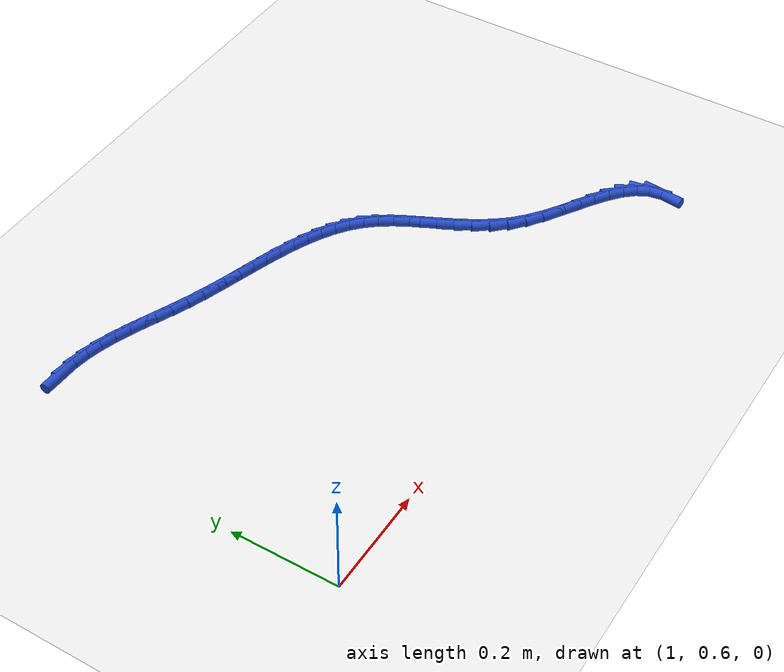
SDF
<sdf version="1.6">
 <world name="default">
  <model name="ground_plane">
   <static>1</static>
   <link name="link">
    <collision name="collision">
     <geometry><plane><normal>0 0 1</normal><size>100 100</size></plane></geometry>
     <surface><friction><ode><mu>100</mu><mu2>50</mu2></ode></friction></surface>
    </collision>
    <visual name="visual">
     <cast_shadows>0</cast_shadows>
     <geometry><plane><normal>0 0 1</normal><size>100 100</size></plane></geometry>
     <material>
      <script><uri>file://media/materials/scripts/gazebo.material</uri><name>Gazebo/WhiteGlow</name></script>
     </material>
    </visual>
   </link>
  </model>
  <model name="line">
   <link name="link_60">
    <pose>1.113208424299135 1.2256482872259706 0.01 0 1.57 -0.03630417214746851</pose>
    <collision name="collision">
     <geometry><cylinder><radius>0.01</radius><length>0.08</length></cylinder></geometry>
    </collision>
    <visual name="visual">
     <material>
      <script><name>Gazebo/Blue</name><uri>file://media/materials/scripts/gazebo.material</uri></script>
     </material>
     <geometry><cylinder><radius>0.01</radius><length>0.08</length></cylinder></geometry>
    </visual>
   </link>
   <link name="link_61">
    <pose>1.142344049727454 1.2245900775196437 0.01 0 1.57 -0.13870744743476215</pose>
    <collision name="collision">
     <geometry><cylinder><radius>0.01</radius><length>0.08</length></cylinder></geometry>
    </collision>
    <visual name="visual">
     <material>
      <script><name>Gazebo/Blue</name><uri>file://media/materials/scripts/gazebo.material</uri></script>
     </material>
     <geometry><cylinder><radius>0.01</radius><length>0.08</length></cylinder></geometry>
    </visual>
   </link>
   <link name="link_62">
    <pose>1.1709801797506125 1.220592361715455 0.01 0 1.57 -0.2285328874764467</pose>
    <collision name="collision">
     <geometry><cylinder><radius>0.01</radius><length>0.08</length></cylinder></geometry>
    </collision>
    <visual name="visual">
     <material>
      <script><name>Gazebo/Blue</name><uri>file://media/materials/scripts/gazebo.material</uri></script>
     </material>
     <geometry><cylinder><radius>0.01</radius><length>0.08</length></cylinder></geometry>
    </visual>
   </link>
   <link name="link_63">
    <pose>1.1992093390987844 1.2140263623309016 0.01 0 1.57 -0.2996577794931523</pose>
    <collision name="collision">
     <geometry><cylinder><radius>0.01</radius><length>0.08</length></cylinder></geometry>
    </collision>
    <visual name="visual">
     <material>
      <script><name>Gazebo/Blue</name><uri>file://media/materials/scripts/gazebo.material</uri></script>
     </material>
     <geometry><cylinder><radius>0.01</radius><length>0.08</length></cylinder></geometry>
    </visual>
   </link>
   <link name="link_64">
    <pose>1.2271896140024414 1.2053815396048047 0.01 0 1.57 -0.3516989463908724</pose>
    <collision name="collision">
     <geometry><cylinder><radius>0.01</radius><length>0.08</length></cylinder></geometry>
    </collision>
    <visual name="visual">
     <material>
      <script><name>Gazebo/Blue</name><uri>file://media/materials/scripts/gazebo.material</uri></script>
     </material>
     <geometry><cylinder><radius>0.01</radius><length>0.08</length></cylinder></geometry>
    </visual>
   </link>
   <link name="link_65">
    <pose>1.2550790918361958 1.1951473558393957 0.01 0 1.57 -0.385165419368328</pose>
    <collision name="collision">
     <geometry><cylinder><radius>0.01</radius><length>0.08</length></cylinder></geometry>
    </collision>
    <visual name="visual">
     <material>
      <script><name>Gazebo/Blue</name><uri>file://media/materials/scripts/gazebo.material</uri></script>
     </material>
     <geometry><cylinder><radius>0.01</radius><length>0.08</length></cylinder></geometry>
    </visual>
   </link>
   <link name="link_66">
    <pose>1.2830358599746574 1.1838132733369031 0.01 0 1.57 -0.4008816383495842</pose>
    <collision name="collision">
     <geometry><cylinder><radius>0.01</radius><length>0.08</length></cylinder></geometry>
    </collision>
    <visual name="visual">
     <material>
      <script><name>Gazebo/Blue</name><uri>file://media/materials/scripts/gazebo.material</uri></script>
     </material>
     <geometry><cylinder><radius>0.01</radius><length>0.08</length></cylinder></geometry>
    </visual>
   </link>
   <link name="link_67">
    <pose>1.3112180057924354 1.1718687543995576 0.01 0 1.57 -0.3996479175823724</pose>
    <collision name="collision">
     <geometry><cylinder><radius>0.01</radius><length>0.08</length></cylinder></geometry>
    </collision>
    <visual name="visual">
     <material>
      <script><name>Gazebo/Blue</name><uri>file://media/materials/scripts/gazebo.material</uri></script>
     </material>
     <geometry><cylinder><radius>0.01</radius><length>0.08</length></cylinder></geometry>
    </visual>
   </link>
   <link name="link_68">
    <pose>1.3397836166641408 1.1598032613295886 0.01 0 1.57 -0.38210880384513446</pose>
    <collision name="collision">
     <geometry><cylinder><radius>0.01</radius><length>0.08</length></cylinder></geometry>
    </collision>
    <visual name="visual">
     <material>
      <script><name>Gazebo/Blue</name><uri>file://media/materials/scripts/gazebo.material</uri></script>
     </material>
     <geometry><cylinder><radius>0.01</radius><length>0.08</length></cylinder></geometry>
    </visual>
   </link>
   <link name="link_69">
    <pose>1.3688907799643837 1.1481062564292264 0.01 0 1.57 -0.3503955778418518</pose>
    <collision name="collision">
     <geometry><cylinder><radius>0.01</radius><length>0.08</length></cylinder></geometry>
    </collision>
    <visual name="visual">
     <material>
      <script><name>Gazebo/Blue</name><uri>file://media/materials/scripts/gazebo.material</uri></script>
     </material>
     <geometry><cylinder><radius>0.01</radius><length>0.08</length></cylinder></geometry>
    </visual>
   </link>
   <link name="link_70">
    <pose>1.3986723270454977 1.1372217905174389 0.01 0 1.57 -0.32127867489133377</pose>
    <collision name="collision">
     <geometry><cylinder><radius>0.01</radius><length>0.08</length></cylinder></geometry>
    </collision>
    <visual name="visual">
     <material>
      <script><name>Gazebo/Blue</name><uri>file://media/materials/scripts/gazebo.material</uri></script>
     </material>
     <geometry><cylinder><radius>0.01</radius><length>0.08</length></cylinder></geometry>
    </visual>
   </link>
   <link name="link_71">
    <pose>1.4290018775737232 1.1271278399453108 0.01 0 1.57 -0.30398634813245</pose>
    <collision name="collision">
     <geometry><cylinder><radius>0.01</radius><length>0.08</length></cylinder></geometry>
    </collision>
    <visual name="visual">
     <material>
      <script><name>Gazebo/Blue</name><uri>file://media/materials/scripts/gazebo.material</uri></script>
     </material>
     <geometry><cylinder><radius>0.01</radius><length>0.08</length></cylinder></geometry>
    </visual>
   </link>
   <link name="link_72">
    <pose>1.459600819893173 1.117528662183703 0.01 0 1.57 -0.2982603628310052</pose>
    <collision name="collision">
     <geometry><cylinder><radius>0.01</radius><length>0.08</length></cylinder></geometry>
    </collision>
    <visual name="visual">
     <material>
      <script><name>Gazebo/Blue</name><uri>file://media/materials/scripts/gazebo.material</uri></script>
     </material>
     <geometry><cylinder><radius>0.01</radius><length>0.08</length></cylinder></geometry>
    </visual>
   </link>
   <link name="link_73">
    <pose>1.4901886013452763 1.1081250246918721 0.01 0 1.57 -0.3040815012861486</pose>
    <collision name="collision">
     <geometry><cylinder><radius>0.01</radius><length>0.08</length></cylinder></geometry>
    </collision>
    <visual name="visual">
     <material>
      <script><name>Gazebo/Blue</name><uri>file://media/materials/scripts/gazebo.material</uri></script>
     </material>
     <geometry><cylinder><radius>0.01</radius><length>0.08</length></cylinder></geometry>
    </visual>
   </link>
   <link name="link_74">
    <pose>1.5204846692714629 1.0986176949290745 0.01 0 1.57 -0.32182081948737523</pose>
    <collision name="collision">
     <geometry><cylinder><radius>0.01</radius><length>0.08</length></cylinder></geometry>
    </collision>
    <visual name="visual">
     <material>
      <script><name>Gazebo/Blue</name><uri>file://media/materials/scripts/gazebo.material</uri></script>
     </material>
     <geometry><cylinder><radius>0.01</radius><length>0.08</length></cylinder></geometry>
    </visual>
   </link>
   <link name="link_75">
    <pose>1.5502084710131603 1.0887074403545662 0.01 0 1.57 -0.35225013851448655</pose>
    <collision name="collision">
     <geometry><cylinder><radius>0.01</radius><length>0.08</length></cylinder></geometry>
    </collision>
    <visual name="visual">
     <material>
      <script><name>Gazebo/Blue</name><uri>file://media/materials/scripts/gazebo.material</uri></script>
     </material>
     <geometry><cylinder><radius>0.01</radius><length>0.08</length></cylinder></geometry>
    </visual>
   </link>
   <link name="link_76">
    <pose>1.579079453911799 1.0780950284276043 0.01 0 1.57 -0.3965243735084738</pose>
    <collision name="collision">
     <geometry><cylinder><radius>0.01</radius><length>0.08</length></cylinder></geometry>
    </collision>
    <visual name="visual">
     <material>
      <script><name>Gazebo/Blue</name><uri>file://media/materials/scripts/gazebo.material</uri></script>
     </material>
     <geometry><cylinder><radius>0.01</radius><length>0.08</length></cylinder></geometry>
    </visual>
   </link>
   <link name="link_77">
    <pose>1.6068170653088067 1.0664812266074444 0.01 0 1.57 -0.45610008373475114</pose>
    <collision name="collision">
     <geometry><cylinder><radius>0.01</radius><length>0.08</length></cylinder></geometry>
    </collision>
    <visual name="visual">
     <material>
      <script><name>Gazebo/Blue</name><uri>file://media/materials/scripts/gazebo.material</uri></script>
     </material>
     <geometry><cylinder><radius>0.01</radius><length>0.08</length></cylinder></geometry>
    </visual>
   </link>
   <link name="link_78">
    <pose>1.6331407525456145 1.0535668023533438 0.01 0 1.57 -0.5325233066122538</pose>
    <collision name="collision">
     <geometry><cylinder><radius>0.01</radius><length>0.08</length></cylinder></geometry>
    </collision>
    <visual name="visual">
     <material>
      <script><name>Gazebo/Blue</name><uri>file://media/materials/scripts/gazebo.material</uri></script>
     </material>
     <geometry><cylinder><radius>0.01</radius><length>0.08</length></cylinder></geometry>
    </visual>
   </link>
   <link name="link_79">
    <pose>1.6577699629636502 1.0390525231245582 0.01 0 1.57 -0.6269923249981622</pose>
    <collision name="collision">
     <geometry><cylinder><radius>0.01</radius><length>0.08</length></cylinder></geometry>
    </collision>
    <visual name="visual">
     <material>
      <script><name>Gazebo/Blue</name><uri>file://media/materials/scripts/gazebo.material</uri></script>
     </material>
     <geometry><cylinder><radius>0.01</radius><length>0.08</length></cylinder></geometry>
    </visual>
   </link>
   <link name="link_80">
    <pose>1.6804241439043432 1.0226391563803443 0.01 0 1.57 -0.7396239841516283</pose>
    <collision name="collision">
     <geometry><cylinder><radius>0.01</radius><length>0.08</length></cylinder></geometry>
    </collision>
    <visual name="visual">
     <material>
      <script><name>Gazebo/Blue</name><uri>file://media/materials/scripts/gazebo.material</uri></script>
     </material>
     <geometry><cylinder><radius>0.01</radius><length>0.08</length></cylinder></geometry>
    </visual>
   </link>
   <link name="link_81">
    <pose>1.7008227427091223 1.0040274695799578 0.01 0 1.57 -0.866914314070212</pose>
    <collision name="collision">
     <geometry><cylinder><radius>0.01</radius><length>0.08</length></cylinder></geometry>
    </collision>
    <visual name="visual">
     <material>
      <script><name>Gazebo/Blue</name><uri>file://media/materials/scripts/gazebo.material</uri></script>
     </material>
     <geometry><cylinder><radius>0.01</radius><length>0.08</length></cylinder></geometry>
    </visual>
   </link>
   <link name="link_82">
    <pose>1.7187191181770043 0.9829467773228504 0.01 0 1.57 -0.9800467331022166</pose>
    <collision name="collision">
     <geometry><cylinder><radius>0.01</radius><length>0.08</length></cylinder></geometry>
    </collision>
    <visual name="visual">
     <material>
      <script><name>Gazebo/Blue</name><uri>file://media/materials/scripts/gazebo.material</uri></script>
     </material>
     <geometry><cylinder><radius>0.01</radius><length>0.08</length></cylinder></geometry>
    </visual>
   </link>
   <link name="link_83">
    <pose>1.7343954913425348 0.9595715978492189 0.01 0 1.57 -1.057982348194634</pose>
    <collision name="collision">
     <geometry><cylinder><radius>0.01</radius><length>0.08</length></cylinder></geometry>
    </collision>
    <visual name="visual">
     <material>
      <script><name>Gazebo/Blue</name><uri>file://media/materials/scripts/gazebo.material</uri></script>
     </material>
     <geometry><cylinder><radius>0.01</radius><length>0.08</length></cylinder></geometry>
    </visual>
   </link>
   <link name="link_84">
    <pose>1.7485524577138354 0.9344286428937454 0.01 0 1.57 -1.1022351529577938</pose>
    <collision name="collision">
     <geometry><cylinder><radius>0.01</radius><length>0.08</length></cylinder></geometry>
    </collision>
    <visual name="visual">
     <material>
      <script><name>Gazebo/Blue</name><uri>file://media/materials/scripts/gazebo.material</uri></script>
     </material>
     <geometry><cylinder><radius>0.01</radius><length>0.08</length></cylinder></geometry>
    </visual>
   </link>
   <link name="link_85">
    <pose>1.7619020455688992 0.9080542484569961 0.01 0 1.57 -1.1154731399377786</pose>
    <collision name="collision">
     <geometry><cylinder><radius>0.01</radius><length>0.08</length></cylinder></geometry>
    </collision>
    <visual name="visual">
     <material>
      <script><name>Gazebo/Blue</name><uri>file://media/materials/scripts/gazebo.material</uri></script>
     </material>
     <geometry><cylinder><radius>0.01</radius><length>0.08</length></cylinder></geometry>
    </visual>
   </link>
   <link name="link_86">
    <pose>1.77515628318572 0.8809847505395376 0.01 0 1.57 -1.0996326130453364</pose>
    <collision name="collision">
     <geometry><cylinder><radius>0.01</radius><length>0.08</length></cylinder></geometry>
    </collision>
    <visual name="visual">
     <material>
      <script><name>Gazebo/Blue</name><uri>file://media/materials/scripts/gazebo.material</uri></script>
     </material>
     <geometry><cylinder><radius>0.01</radius><length>0.08</length></cylinder></geometry>
    </visual>
   </link>
   <link name="link_87">
    <pose>1.7890271988422919 0.8537564851419361 0.01 0 1.57 -1.055692080320309</pose>
    <collision name="collision">
     <geometry><cylinder><radius>0.01</radius><length>0.08</length></cylinder></geometry>
    </collision>
    <visual name="visual">
     <material>
      <script><name>Gazebo/Blue</name><uri>file://media/materials/scripts/gazebo.material</uri></script>
     </material>
     <geometry><cylinder><radius>0.01</radius><length>0.08</length></cylinder></geometry>
    </visual>
   </link>
   <link name="link_88">
    <pose>1.804226820816607 0.8269057882647577 0.01 0 1.57 -0.9841519334860171</pose>
    <collision name="collision">
     <geometry><cylinder><radius>0.01</radius><length>0.08</length></cylinder></geometry>
    </collision>
    <visual name="visual">
     <material>
      <script><name>Gazebo/Blue</name><uri>file://media/materials/scripts/gazebo.material</uri></script>
     </material>
     <geometry><cylinder><radius>0.01</radius><length>0.08</length></cylinder></geometry>
    </visual>
   </link>
   <link name="link_89">
    <pose>1.8214671773866606 0.8009689959085682 0.01 0 1.57 -0.8860787510039599</pose>
    <collision name="collision">
     <geometry><cylinder><radius>0.01</radius><length>0.08</length></cylinder></geometry>
    </collision>
    <visual name="visual">
     <material>
      <script><name>Gazebo/Blue</name><uri>file://media/materials/scripts/gazebo.material</uri></script>
     </material>
     <geometry><cylinder><radius>0.01</radius><length>0.08</length></cylinder></geometry>
    </visual>
   </link>
   <link name="link_90">
    <pose>1.841460296830445 0.7764824440739347 0.01 0 1.57 -0.765248309471508</pose>
    <collision name="collision">
     <geometry><cylinder><radius>0.01</radius><length>0.08</length></cylinder></geometry>
    </collision>
    <visual name="visual">
     <material>
      <script><name>Gazebo/Blue</name><uri>file://media/materials/scripts/gazebo.material</uri></script>
     </material>
     <geometry><cylinder><radius>0.01</radius><length>0.08</length></cylinder></geometry>
    </visual>
   </link>
   <link name="link_91">
    <pose>1.8648973944201301 0.7539713217279468 0.01 0 1.57 -0.653715719577656</pose>
    <collision name="collision">
     <geometry><cylinder><radius>0.01</radius><length>0.08</length></cylinder></geometry>
    </collision>
    <visual name="visual">
     <material>
      <script><name>Gazebo/Blue</name><uri>file://media/materials/scripts/gazebo.material</uri></script>
     </material>
     <geometry><cylinder><radius>0.01</radius><length>0.08</length></cylinder></geometry>
    </visual>
   </link>
   <link name="link_92">
    <pose>1.8916152484652957 0.7335031983325643 0.01 0 1.57 -0.5839907057161049</pose>
    <collision name="collision">
     <geometry><cylinder><radius>0.01</radius><length>0.08</length></cylinder></geometry>
    </collision>
    <visual name="visual">
     <material>
      <script><name>Gazebo/Blue</name><uri>file://media/materials/scripts/gazebo.material</uri></script>
     </material>
     <geometry><cylinder><radius>0.01</radius><length>0.08</length></cylinder></geometry>
    </visual>
   </link>
   <link name="link_93">
    <pose>1.9203137324165045 0.714536739636842 0.01 0 1.57 -0.5520855028899293</pose>
    <collision name="collision">
     <geometry><cylinder><radius>0.01</radius><length>0.08</length></cylinder></geometry>
    </collision>
    <visual name="visual">
     <material>
      <script><name>Gazebo/Blue</name><uri>file://media/materials/scripts/gazebo.material</uri></script>
     </material>
     <geometry><cylinder><radius>0.01</radius><length>0.08</length></cylinder></geometry>
    </visual>
   </link>
   <link name="link_94">
    <pose>1.949613964453179 0.6964884316272755 0.01 0 1.57 -0.5557386701990819</pose>
    <collision name="collision">
     <geometry><cylinder><radius>0.01</radius><length>0.08</length></cylinder></geometry>
    </collision>
    <visual name="visual">
     <material>
      <script><name>Gazebo/Blue</name><uri>file://media/materials/scripts/gazebo.material</uri></script>
     </material>
     <geometry><cylinder><radius>0.01</radius><length>0.08</length></cylinder></geometry>
    </visual>
   </link>
   <link name="link_95">
    <pose>1.9781370627547423 0.6787747602903589 0.01 0 1.57 -0.5980302356802341</pose>
    <collision name="collision">
     <geometry><cylinder><radius>0.01</radius><length>0.08</length></cylinder></geometry>
    </collision>
    <visual name="visual">
     <material>
      <script><name>Gazebo/Blue</name><uri>file://media/materials/scripts/gazebo.material</uri></script>
     </material>
     <geometry><cylinder><radius>0.01</radius><length>0.08</length></cylinder></geometry>
    </visual>
   </link>
   <link name="link_96">
    <pose>2.004504145500618 0.6608122116125867 0.01 0 1.57 -0.6887146237510617</pose>
    <collision name="collision">
     <geometry><cylinder><radius>0.01</radius><length>0.08</length></cylinder></geometry>
    </collision>
    <visual name="visual">
     <material>
      <script><name>Gazebo/Blue</name><uri>file://media/materials/scripts/gazebo.material</uri></script>
     </material>
     <geometry><cylinder><radius>0.01</radius><length>0.08</length></cylinder></geometry>
    </visual>
   </link>
   <link name="link_97">
    <pose>2.02733633087023 0.6420172715804546 0.01 0 1.57 -0.8454487257513674</pose>
    <collision name="collision">
     <geometry><cylinder><radius>0.01</radius><length>0.08</length></cylinder></geometry>
    </collision>
    <visual name="visual">
     <material>
      <script><name>Gazebo/Blue</name><uri>file://media/materials/scripts/gazebo.material</uri></script>
     </material>
     <geometry><cylinder><radius>0.01</radius><length>0.08</length></cylinder></geometry>
    </visual>
   </link>
   <link name="link_98">
    <pose>2.0452547370429994 0.6218064261804568 0.01 0 1.57 -1.088572893270136</pose>
    <collision name="collision">
     <geometry><cylinder><radius>0.01</radius><length>0.08</length></cylinder></geometry>
    </collision>
    <visual name="visual">
     <material>
      <script><name>Gazebo/Blue</name><uri>file://media/materials/scripts/gazebo.material</uri></script>
     </material>
     <geometry><cylinder><radius>0.01</radius><length>0.08</length></cylinder></geometry>
    </visual>
   </link>
   <link name="link_99">
    <pose>2.056880482198352 0.599596161399088 0.01 0 1.57 -1.412153378499918</pose>
    <collision name="collision">
     <geometry><cylinder><radius>0.01</radius><length>0.08</length></cylinder></geometry>
    </collision>
    <visual name="visual">
     <material>
      <script><name>Gazebo/Blue</name><uri>file://media/materials/scripts/gazebo.material</uri></script>
     </material>
     <geometry><cylinder><radius>0.01</radius><length>0.08</length></cylinder></geometry>
    </visual>
   </link>
   <link name="link_100">
    <pose>2.060846515798704 0.5748064947016802 0.01 0 1.57 1.4428040337691868</pose>
    <collision name="collision">
     <geometry><cylinder><radius>0.01</radius><length>0.08</length></cylinder></geometry>
    </collision>
    <visual name="visual">
     <material>
      <script><name>Gazebo/Blue</name><uri>file://media/materials/scripts/gazebo.material</uri></script>
     </material>
     <geometry><cylinder><radius>0.01</radius><length>0.08</length></cylinder></geometry>
    </visual>
   </link>
  </model>
 </world>
</sdf>
